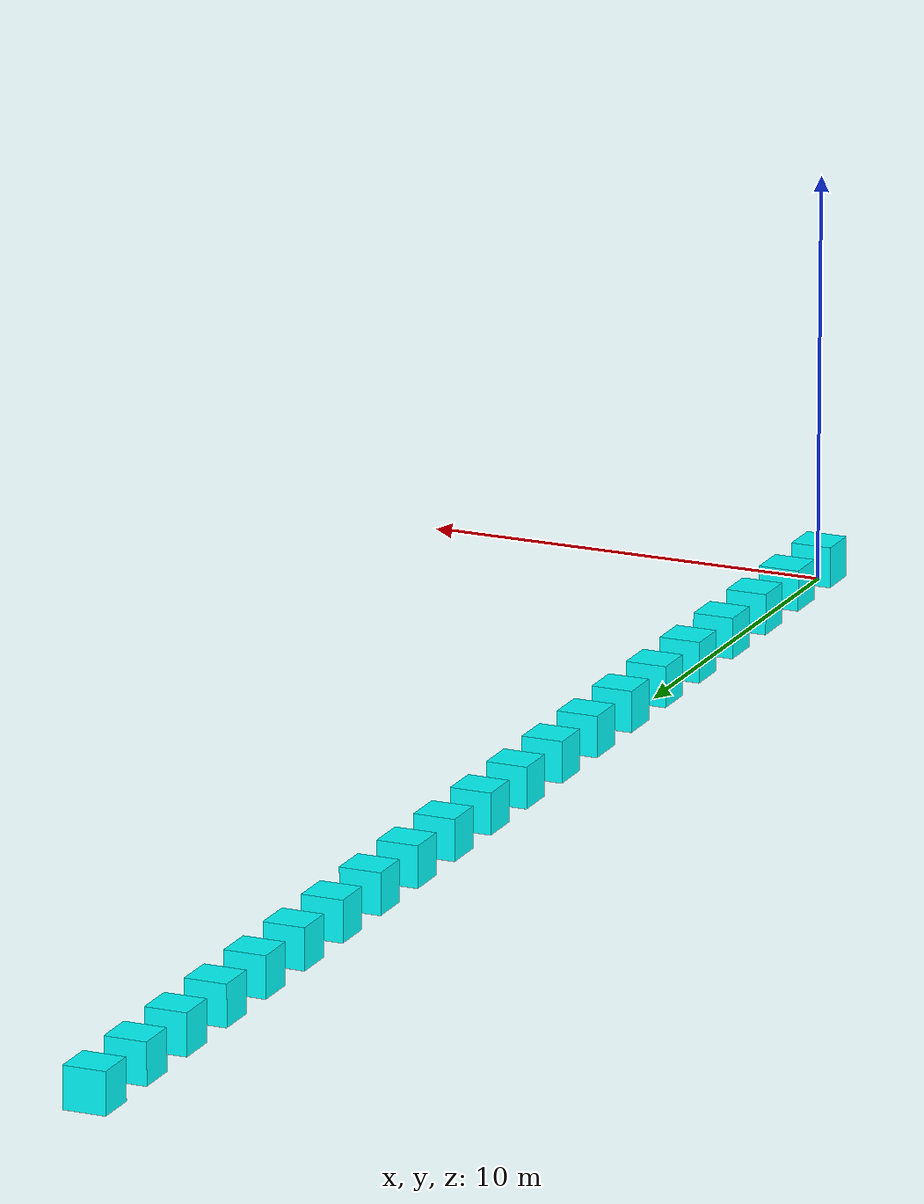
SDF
<?xml version="1.0" ?>

<sdf version="1.6">
  <world name="fluid_added_mass">
    <plugin
      filename="gz-sim-physics-system"
      name="gz::sim::systems::Physics">
    </plugin>
    <plugin
      filename="gz-sim-scene-broadcaster-system"
      name="gz::sim::systems::SceneBroadcaster">
    </plugin>
    <plugin
      filename="gz-sim-apply-link-wrench-system"
      name="gz::sim::systems::ApplyLinkWrench">

      <persistent>
        <entity_name>box_xx</entity_name>
        <entity_type>model</entity_type>
        <force>1 0 0</force>
      </persistent>

      <persistent>
        <entity_name>box_xy</entity_name>
        <entity_type>model</entity_type>
        <force>1 0 0</force>
      </persistent>

      <persistent>
        <entity_name>box_xz</entity_name>
        <entity_type>model</entity_type>
        <force>1 0 0</force>
      </persistent>

      <persistent>
        <entity_name>box_xp</entity_name>
        <entity_type>model</entity_type>
        <force>1 0 0</force>
      </persistent>

      <persistent>
        <entity_name>box_xq</entity_name>
        <entity_type>model</entity_type>
        <force>1 0 0</force>
      </persistent>

      <persistent>
        <entity_name>box_xr</entity_name>
        <entity_type>model</entity_type>
        <force>1 0 0</force>
      </persistent>

      <persistent>
        <entity_name>box_yy</entity_name>
        <entity_type>model</entity_type>
        <force>1 0 0</force>
      </persistent>

      <persistent>
        <entity_name>box_yz</entity_name>
        <entity_type>model</entity_type>
        <force>1 0 0</force>
      </persistent>

      <persistent>
        <entity_name>box_yp</entity_name>
        <entity_type>model</entity_type>
        <force>1 0 0</force>
      </persistent>

      <persistent>
        <entity_name>box_yq</entity_name>
        <entity_type>model</entity_type>
        <force>1 0 0</force>
      </persistent>

      <persistent>
        <entity_name>box_yr</entity_name>
        <entity_type>model</entity_type>
        <force>1 0 0</force>
      </persistent>

      <persistent>
        <entity_name>box_zz</entity_name>
        <entity_type>model</entity_type>
        <force>1 0 0</force>
      </persistent>

      <persistent>
        <entity_name>box_zp</entity_name>
        <entity_type>model</entity_type>
        <force>1 0 0</force>
      </persistent>

      <persistent>
        <entity_name>box_zq</entity_name>
        <entity_type>model</entity_type>
        <force>1 0 0</force>
      </persistent>

      <persistent>
        <entity_name>box_zr</entity_name>
        <entity_type>model</entity_type>
        <force>1 0 0</force>
      </persistent>

      <persistent>
        <entity_name>box_pp</entity_name>
        <entity_type>model</entity_type>
        <force>1 0 0</force>
      </persistent>

      <persistent>
        <entity_name>box_pq</entity_name>
        <entity_type>model</entity_type>
        <force>1 0 0</force>
      </persistent>

      <persistent>
        <entity_name>box_pr</entity_name>
        <entity_type>model</entity_type>
        <force>1 0 0</force>
      </persistent>

      <persistent>
        <entity_name>box_qq</entity_name>
        <entity_type>model</entity_type>
        <force>1 0 0</force>
      </persistent>

      <persistent>
        <entity_name>box_qr</entity_name>
        <entity_type>model</entity_type>
        <force>1 0 0</force>
      </persistent>

      <persistent>
        <entity_name>box_rr</entity_name>
        <entity_type>model</entity_type>
        <force>1 0 0</force>
      </persistent>

    </plugin>

    <gravity>0 0 0</gravity>

    <light type="directional" name="sun">
      <cast_shadows>true</cast_shadows>
      <pose>0 0 10 0 0 0</pose>
      <diffuse>0.8 0.8 0.8 1</diffuse>
      <specular>0.2 0.2 0.2 1</specular>
      <attenuation>
        <range>1000</range>
        <constant>0.9</constant>
        <linear>0.01</linear>
        <quadratic>0.001</quadratic>
      </attenuation>
      <direction>-0.5 0.1 -0.9</direction>
    </light>

    <model name="box_xx">
      <pose>0 0.0 0.5 0 0 0</pose>
      <link name="link">
        <inertial>
          <inertia>
            <ixx>0.1</ixx>
            <ixy>0</ixy>
            <ixz>0</ixz>
            <iyy>0.1</iyy>
            <iyz>0</iyz>
            <izz>0.1</izz>
          </inertia>
          <mass>1.0</mass>
          <fluid_added_mass>
            <xx>0.261666</xx>
          </fluid_added_mass>
        </inertial>
        <collision name="collision">
          <geometry>
            <box>
              <size>1.0 1.0 1.0</size>
            </box>
          </geometry>
        </collision>

        <visual name="visual">
          <geometry>
            <box>
              <size>1.0 1.0 1.0</size>
            </box>
          </geometry>
          <material>
            <ambient>0 1 1 1</ambient>
            <diffuse>0 1 1 1</diffuse>
            <specular>1 0 1 1</specular>
          </material>
        </visual>
      </link>
    </model>

    <model name="box_xy">
      <pose>0 2.0 0.5 0 0 0</pose>
      <link name="link">
        <inertial>
          <inertia>
            <ixx>0.1</ixx>
            <ixy>0</ixy>
            <ixz>0</ixz>
            <iyy>0.1</iyy>
            <iyz>0</iyz>
            <izz>0.1</izz>
          </inertia>
          <mass>1.0</mass>
          <fluid_added_mass>
            <xy>0.261666</xy>
          </fluid_added_mass>
        </inertial>
        <collision name="collision">
          <geometry>
            <box>
              <size>1.0 1.0 1.0</size>
            </box>
          </geometry>
        </collision>

        <visual name="visual">
          <geometry>
            <box>
              <size>1.0 1.0 1.0</size>
            </box>
          </geometry>
          <material>
            <ambient>0 1 1 1</ambient>
            <diffuse>0 1 1 1</diffuse>
            <specular>1 0 1 1</specular>
          </material>
        </visual>
      </link>
    </model>

    <model name="box_xz">
      <pose>0 4.0 0.5 0 0 0</pose>
      <link name="link">
        <inertial>
          <inertia>
            <ixx>0.1</ixx>
            <ixy>0</ixy>
            <ixz>0</ixz>
            <iyy>0.1</iyy>
            <iyz>0</iyz>
            <izz>0.1</izz>
          </inertia>
          <mass>1.0</mass>
          <fluid_added_mass>
            <xz>0.261666</xz>
          </fluid_added_mass>
        </inertial>
        <collision name="collision">
          <geometry>
            <box>
              <size>1.0 1.0 1.0</size>
            </box>
          </geometry>
        </collision>

        <visual name="visual">
          <geometry>
            <box>
              <size>1.0 1.0 1.0</size>
            </box>
          </geometry>
          <material>
            <ambient>0 1 1 1</ambient>
            <diffuse>0 1 1 1</diffuse>
            <specular>1 0 1 1</specular>
          </material>
        </visual>
      </link>
    </model>

    <model name="box_xp">
      <pose>0 6.0 0.5 0 0 0</pose>
      <link name="link">
        <inertial>
          <inertia>
            <ixx>0.1</ixx>
            <ixy>0</ixy>
            <ixz>0</ixz>
            <iyy>0.1</iyy>
            <iyz>0</iyz>
            <izz>0.1</izz>
          </inertia>
          <mass>1.0</mass>
          <fluid_added_mass>
            <xp>0.261666</xp>
          </fluid_added_mass>
        </inertial>
        <collision name="collision">
          <geometry>
            <box>
              <size>1.0 1.0 1.0</size>
            </box>
          </geometry>
        </collision>

        <visual name="visual">
          <geometry>
            <box>
              <size>1.0 1.0 1.0</size>
            </box>
          </geometry>
          <material>
            <ambient>0 1 1 1</ambient>
            <diffuse>0 1 1 1</diffuse>
            <specular>1 0 1 1</specular>
          </material>
        </visual>
      </link>
    </model>

    <model name="box_xq">
      <pose>0 8.0 0.5 0 0 0</pose>
      <link name="link">
        <inertial>
          <inertia>
            <ixx>0.1</ixx>
            <ixy>0</ixy>
            <ixz>0</ixz>
            <iyy>0.1</iyy>
            <iyz>0</iyz>
            <izz>0.1</izz>
          </inertia>
          <mass>1.0</mass>
          <fluid_added_mass>
            <xq>0.261666</xq>
          </fluid_added_mass>
        </inertial>
        <collision name="collision">
          <geometry>
            <box>
              <size>1.0 1.0 1.0</size>
            </box>
          </geometry>
        </collision>

        <visual name="visual">
          <geometry>
            <box>
              <size>1.0 1.0 1.0</size>
            </box>
          </geometry>
          <material>
            <ambient>0 1 1 1</ambient>
            <diffuse>0 1 1 1</diffuse>
            <specular>1 0 1 1</specular>
          </material>
        </visual>
      </link>
    </model>

    <model name="box_xr">
      <pose>0 10.0 0.5 0 0 0</pose>
      <link name="link">
        <inertial>
          <inertia>
            <ixx>0.1</ixx>
            <ixy>0</ixy>
            <ixz>0</ixz>
            <iyy>0.1</iyy>
            <iyz>0</iyz>
            <izz>0.1</izz>
          </inertia>
          <mass>1.0</mass>
          <fluid_added_mass>
            <xr>0.261666</xr>
          </fluid_added_mass>
        </inertial>
        <collision name="collision">
          <geometry>
            <box>
              <size>1.0 1.0 1.0</size>
            </box>
          </geometry>
        </collision>

        <visual name="visual">
          <geometry>
            <box>
              <size>1.0 1.0 1.0</size>
            </box>
          </geometry>
          <material>
            <ambient>0 1 1 1</ambient>
            <diffuse>0 1 1 1</diffuse>
            <specular>1 0 1 1</specular>
          </material>
        </visual>
      </link>
    </model>

    <model name="box_yy">
      <pose>0 12.0 0.5 0 0 0</pose>
      <link name="link">
        <inertial>
          <inertia>
            <ixx>0.1</ixx>
            <ixy>0</ixy>
            <ixz>0</ixz>
            <iyy>0.1</iyy>
            <iyz>0</iyz>
            <izz>0.1</izz>
          </inertia>
          <mass>1.0</mass>
          <fluid_added_mass>
            <yy>0.261666</yy>
          </fluid_added_mass>
        </inertial>
        <collision name="collision">
          <geometry>
            <box>
              <size>1.0 1.0 1.0</size>
            </box>
          </geometry>
        </collision>

        <visual name="visual">
          <geometry>
            <box>
              <size>1.0 1.0 1.0</size>
            </box>
          </geometry>
          <material>
            <ambient>0 1 1 1</ambient>
            <diffuse>0 1 1 1</diffuse>
            <specular>1 0 1 1</specular>
          </material>
        </visual>
      </link>
    </model>

    <model name="box_yz">
      <pose>0 14.0 0.5 0 0 0</pose>
      <link name="link">
        <inertial>
          <inertia>
            <ixx>0.1</ixx>
            <ixy>0</ixy>
            <ixz>0</ixz>
            <iyy>0.1</iyy>
            <iyz>0</iyz>
            <izz>0.1</izz>
          </inertia>
          <mass>1.0</mass>
          <fluid_added_mass>
            <yz>0.261666</yz>
          </fluid_added_mass>
        </inertial>
        <collision name="collision">
          <geometry>
            <box>
              <size>1.0 1.0 1.0</size>
            </box>
          </geometry>
        </collision>

        <visual name="visual">
          <geometry>
            <box>
              <size>1.0 1.0 1.0</size>
            </box>
          </geometry>
          <material>
            <ambient>0 1 1 1</ambient>
            <diffuse>0 1 1 1</diffuse>
            <specular>1 0 1 1</specular>
          </material>
        </visual>
      </link>
    </model>

    <model name="box_yp">
      <pose>0 16.0 0.5 0 0 0</pose>
      <link name="link">
        <inertial>
          <inertia>
            <ixx>0.1</ixx>
            <ixy>0</ixy>
            <ixz>0</ixz>
            <iyy>0.1</iyy>
            <iyz>0</iyz>
            <izz>0.1</izz>
          </inertia>
          <mass>1.0</mass>
          <fluid_added_mass>
            <yp>0.261666</yp>
          </fluid_added_mass>
        </inertial>
        <collision name="collision">
          <geometry>
            <box>
              <size>1.0 1.0 1.0</size>
            </box>
          </geometry>
        </collision>

        <visual name="visual">
          <geometry>
            <box>
              <size>1.0 1.0 1.0</size>
            </box>
          </geometry>
          <material>
            <ambient>0 1 1 1</ambient>
            <diffuse>0 1 1 1</diffuse>
            <specular>1 0 1 1</specular>
          </material>
        </visual>
      </link>
    </model>

    <model name="box_yq">
      <pose>0 18.0 0.5 0 0 0</pose>
      <link name="link">
        <inertial>
          <inertia>
            <ixx>0.1</ixx>
            <ixy>0</ixy>
            <ixz>0</ixz>
            <iyy>0.1</iyy>
            <iyz>0</iyz>
            <izz>0.1</izz>
          </inertia>
          <mass>1.0</mass>
          <fluid_added_mass>
            <yq>0.261666</yq>
          </fluid_added_mass>
        </inertial>
        <collision name="collision">
          <geometry>
            <box>
              <size>1.0 1.0 1.0</size>
            </box>
          </geometry>
        </collision>

        <visual name="visual">
          <geometry>
            <box>
              <size>1.0 1.0 1.0</size>
            </box>
          </geometry>
          <material>
            <ambient>0 1 1 1</ambient>
            <diffuse>0 1 1 1</diffuse>
            <specular>1 0 1 1</specular>
          </material>
        </visual>
      </link>
    </model>

    <model name="box_yr">
      <pose>0 20.0 0.5 0 0 0</pose>
      <link name="link">
        <inertial>
          <inertia>
            <ixx>0.1</ixx>
            <ixy>0</ixy>
            <ixz>0</ixz>
            <iyy>0.1</iyy>
            <iyz>0</iyz>
            <izz>0.1</izz>
          </inertia>
          <mass>1.0</mass>
          <fluid_added_mass>
            <yr>0.261666</yr>
          </fluid_added_mass>
        </inertial>
        <collision name="collision">
          <geometry>
            <box>
              <size>1.0 1.0 1.0</size>
            </box>
          </geometry>
        </collision>

        <visual name="visual">
          <geometry>
            <box>
              <size>1.0 1.0 1.0</size>
            </box>
          </geometry>
          <material>
            <ambient>0 1 1 1</ambient>
            <diffuse>0 1 1 1</diffuse>
            <specular>1 0 1 1</specular>
          </material>
        </visual>
      </link>
    </model>

    <model name="box_zz">
      <pose>0 22.0 0.5 0 0 0</pose>
      <link name="link">
        <inertial>
          <inertia>
            <ixx>0.1</ixx>
            <ixy>0</ixy>
            <ixz>0</ixz>
            <iyy>0.1</iyy>
            <iyz>0</iyz>
            <izz>0.1</izz>
          </inertia>
          <mass>1.0</mass>
          <fluid_added_mass>
            <zz>0.261666</zz>
          </fluid_added_mass>
        </inertial>
        <collision name="collision">
          <geometry>
            <box>
              <size>1.0 1.0 1.0</size>
            </box>
          </geometry>
        </collision>

        <visual name="visual">
          <geometry>
            <box>
              <size>1.0 1.0 1.0</size>
            </box>
          </geometry>
          <material>
            <ambient>0 1 1 1</ambient>
            <diffuse>0 1 1 1</diffuse>
            <specular>1 0 1 1</specular>
          </material>
        </visual>
      </link>
    </model>

    <model name="box_zp">
      <pose>0 24.0 0.5 0 0 0</pose>
      <link name="link">
        <inertial>
          <inertia>
            <ixx>0.1</ixx>
            <ixy>0</ixy>
            <ixz>0</ixz>
            <iyy>0.1</iyy>
            <iyz>0</iyz>
            <izz>0.1</izz>
          </inertia>
          <mass>1.0</mass>
          <fluid_added_mass>
            <zp>0.261666</zp>
          </fluid_added_mass>
        </inertial>
        <collision name="collision">
          <geometry>
            <box>
              <size>1.0 1.0 1.0</size>
            </box>
          </geometry>
        </collision>

        <visual name="visual">
          <geometry>
            <box>
              <size>1.0 1.0 1.0</size>
            </box>
          </geometry>
          <material>
            <ambient>0 1 1 1</ambient>
            <diffuse>0 1 1 1</diffuse>
            <specular>1 0 1 1</specular>
          </material>
        </visual>
      </link>
    </model>

    <model name="box_zq">
      <pose>0 26.0 0.5 0 0 0</pose>
      <link name="link">
        <inertial>
          <inertia>
            <ixx>0.1</ixx>
            <ixy>0</ixy>
            <ixz>0</ixz>
            <iyy>0.1</iyy>
            <iyz>0</iyz>
            <izz>0.1</izz>
          </inertia>
          <mass>1.0</mass>
          <fluid_added_mass>
            <zq>0.261666</zq>
          </fluid_added_mass>
        </inertial>
        <collision name="collision">
          <geometry>
            <box>
              <size>1.0 1.0 1.0</size>
            </box>
          </geometry>
        </collision>

        <visual name="visual">
          <geometry>
            <box>
              <size>1.0 1.0 1.0</size>
            </box>
          </geometry>
          <material>
            <ambient>0 1 1 1</ambient>
            <diffuse>0 1 1 1</diffuse>
            <specular>1 0 1 1</specular>
          </material>
        </visual>
      </link>
    </model>

    <model name="box_zr">
      <pose>0 28.0 0.5 0 0 0</pose>
      <link name="link">
        <inertial>
          <inertia>
            <ixx>0.1</ixx>
            <ixy>0</ixy>
            <ixz>0</ixz>
            <iyy>0.1</iyy>
            <iyz>0</iyz>
            <izz>0.1</izz>
          </inertia>
          <mass>1.0</mass>
          <fluid_added_mass>
            <zr>0.261666</zr>
          </fluid_added_mass>
        </inertial>
        <collision name="collision">
          <geometry>
            <box>
              <size>1.0 1.0 1.0</size>
            </box>
          </geometry>
        </collision>

        <visual name="visual">
          <geometry>
            <box>
              <size>1.0 1.0 1.0</size>
            </box>
          </geometry>
          <material>
            <ambient>0 1 1 1</ambient>
            <diffuse>0 1 1 1</diffuse>
            <specular>1 0 1 1</specular>
          </material>
        </visual>
      </link>
    </model>

    <model name="box_pp">
      <pose>0 30.0 0.5 0 0 0</pose>
      <link name="link">
        <inertial>
          <inertia>
            <ixx>0.1</ixx>
            <ixy>0</ixy>
            <ixz>0</ixz>
            <iyy>0.1</iyy>
            <iyz>0</iyz>
            <izz>0.1</izz>
          </inertia>
          <mass>1.0</mass>
          <fluid_added_mass>
            <pp>0.261666</pp>
          </fluid_added_mass>
        </inertial>
        <collision name="collision">
          <geometry>
            <box>
              <size>1.0 1.0 1.0</size>
            </box>
          </geometry>
        </collision>

        <visual name="visual">
          <geometry>
            <box>
              <size>1.0 1.0 1.0</size>
            </box>
          </geometry>
          <material>
            <ambient>0 1 1 1</ambient>
            <diffuse>0 1 1 1</diffuse>
            <specular>1 0 1 1</specular>
          </material>
        </visual>
      </link>
    </model>

    <model name="box_pq">
      <pose>0 32.0 0.5 0 0 0</pose>
      <link name="link">
        <inertial>
          <inertia>
            <ixx>0.1</ixx>
            <ixy>0</ixy>
            <ixz>0</ixz>
            <iyy>0.1</iyy>
            <iyz>0</iyz>
            <izz>0.1</izz>
          </inertia>
          <mass>1.0</mass>
          <fluid_added_mass>
            <pq>0.261666</pq>
          </fluid_added_mass>
        </inertial>
        <collision name="collision">
          <geometry>
            <box>
              <size>1.0 1.0 1.0</size>
            </box>
          </geometry>
        </collision>

        <visual name="visual">
          <geometry>
            <box>
              <size>1.0 1.0 1.0</size>
            </box>
          </geometry>
          <material>
            <ambient>0 1 1 1</ambient>
            <diffuse>0 1 1 1</diffuse>
            <specular>1 0 1 1</specular>
          </material>
        </visual>
      </link>
    </model>

    <model name="box_pr">
      <pose>0 34.0 0.5 0 0 0</pose>
      <link name="link">
        <inertial>
          <inertia>
            <ixx>0.1</ixx>
            <ixy>0</ixy>
            <ixz>0</ixz>
            <iyy>0.1</iyy>
            <iyz>0</iyz>
            <izz>0.1</izz>
          </inertia>
          <mass>1.0</mass>
          <fluid_added_mass>
            <pr>0.261666</pr>
          </fluid_added_mass>
        </inertial>
        <collision name="collision">
          <geometry>
            <box>
              <size>1.0 1.0 1.0</size>
            </box>
          </geometry>
        </collision>

        <visual name="visual">
          <geometry>
            <box>
              <size>1.0 1.0 1.0</size>
            </box>
          </geometry>
          <material>
            <ambient>0 1 1 1</ambient>
            <diffuse>0 1 1 1</diffuse>
            <specular>1 0 1 1</specular>
          </material>
        </visual>
      </link>
    </model>

    <model name="box_qq">
      <pose>0 36.0 0.5 0 0 0</pose>
      <link name="link">
        <inertial>
          <inertia>
            <ixx>0.1</ixx>
            <ixy>0</ixy>
            <ixz>0</ixz>
            <iyy>0.1</iyy>
            <iyz>0</iyz>
            <izz>0.1</izz>
          </inertia>
          <mass>1.0</mass>
          <fluid_added_mass>
            <qq>0.261666</qq>
          </fluid_added_mass>
        </inertial>
        <collision name="collision">
          <geometry>
            <box>
              <size>1.0 1.0 1.0</size>
            </box>
          </geometry>
        </collision>

        <visual name="visual">
          <geometry>
            <box>
              <size>1.0 1.0 1.0</size>
            </box>
          </geometry>
          <material>
            <ambient>0 1 1 1</ambient>
            <diffuse>0 1 1 1</diffuse>
            <specular>1 0 1 1</specular>
          </material>
        </visual>
      </link>
    </model>

    <model name="box_qr">
      <pose>0 38.0 0.5 0 0 0</pose>
      <link name="link">
        <inertial>
          <inertia>
            <ixx>0.1</ixx>
            <ixy>0</ixy>
            <ixz>0</ixz>
            <iyy>0.1</iyy>
            <iyz>0</iyz>
            <izz>0.1</izz>
          </inertia>
          <mass>1.0</mass>
          <fluid_added_mass>
            <qr>0.261666</qr>
          </fluid_added_mass>
        </inertial>
        <collision name="collision">
          <geometry>
            <box>
              <size>1.0 1.0 1.0</size>
            </box>
          </geometry>
        </collision>

        <visual name="visual">
          <geometry>
            <box>
              <size>1.0 1.0 1.0</size>
            </box>
          </geometry>
          <material>
            <ambient>0 1 1 1</ambient>
            <diffuse>0 1 1 1</diffuse>
            <specular>1 0 1 1</specular>
          </material>
        </visual>
      </link>
    </model>

    <model name="box_rr">
      <pose>0 40.0 0.5 0 0 0</pose>
      <link name="link">
        <inertial>
          <inertia>
            <ixx>0.1</ixx>
            <ixy>0</ixy>
            <ixz>0</ixz>
            <iyy>0.1</iyy>
            <iyz>0</iyz>
            <izz>0.1</izz>
          </inertia>
          <mass>1.0</mass>
          <fluid_added_mass>
            <rr>0.261666</rr>
          </fluid_added_mass>
        </inertial>
        <collision name="collision">
          <geometry>
            <box>
              <size>1.0 1.0 1.0</size>
            </box>
          </geometry>
        </collision>

        <visual name="visual">
          <geometry>
            <box>
              <size>1.0 1.0 1.0</size>
            </box>
          </geometry>
          <material>
            <ambient>0 1 1 1</ambient>
            <diffuse>0 1 1 1</diffuse>
            <specular>1 0 1 1</specular>
          </material>
        </visual>
      </link>
    </model>

  </world>
</sdf>
